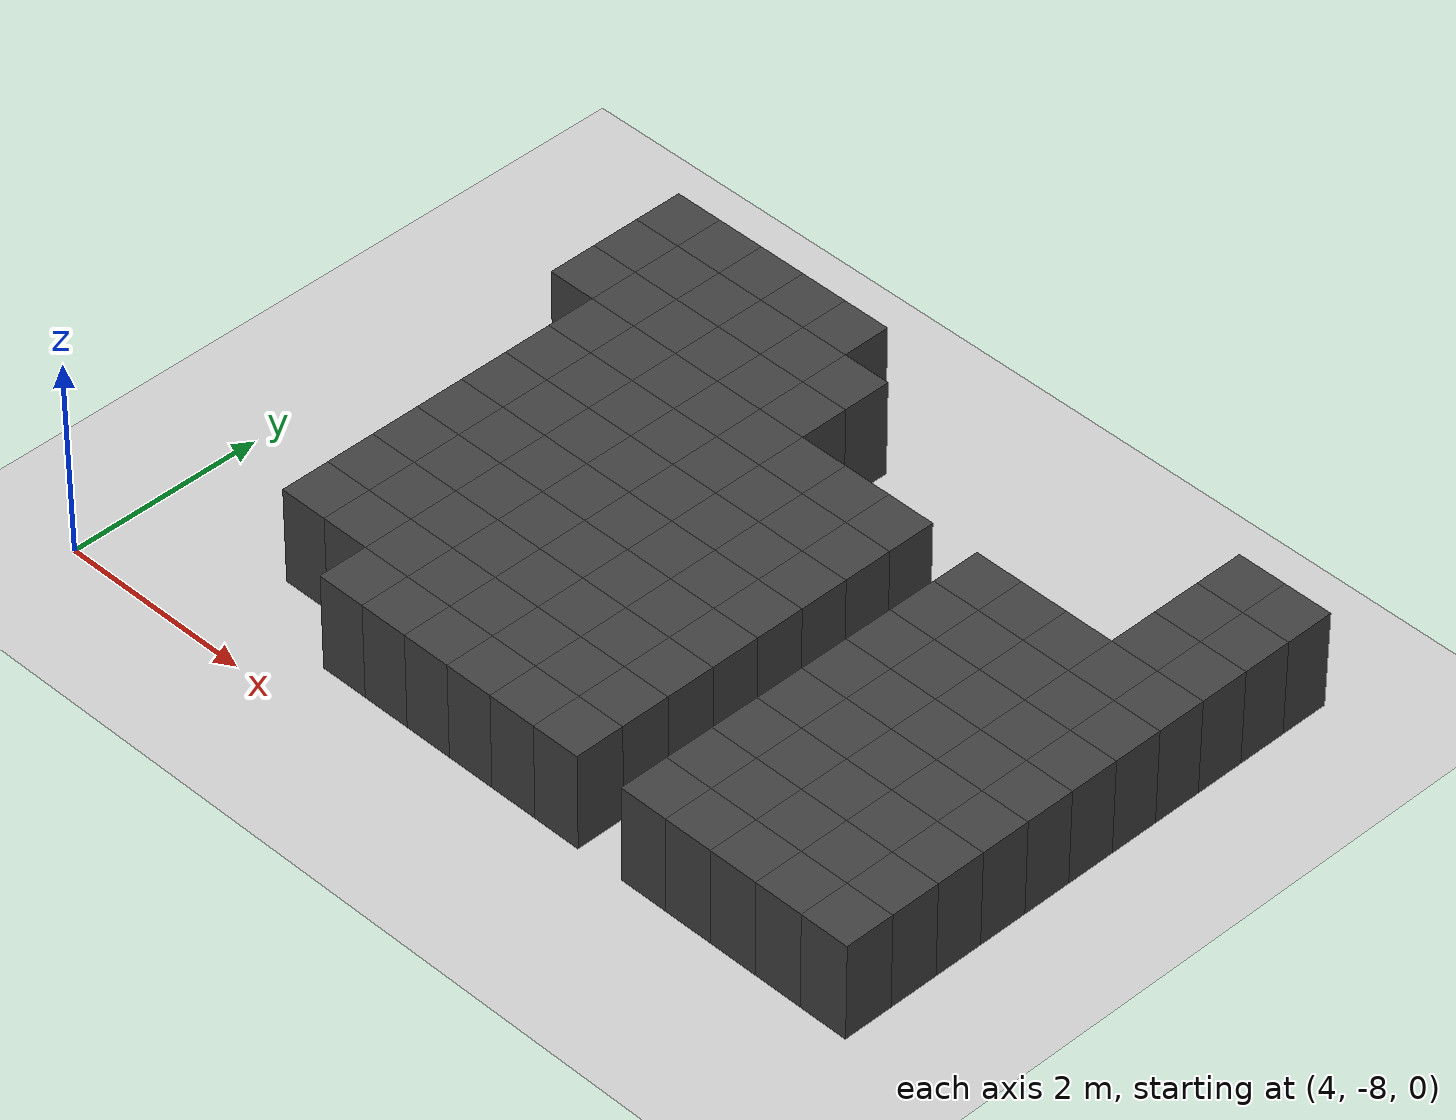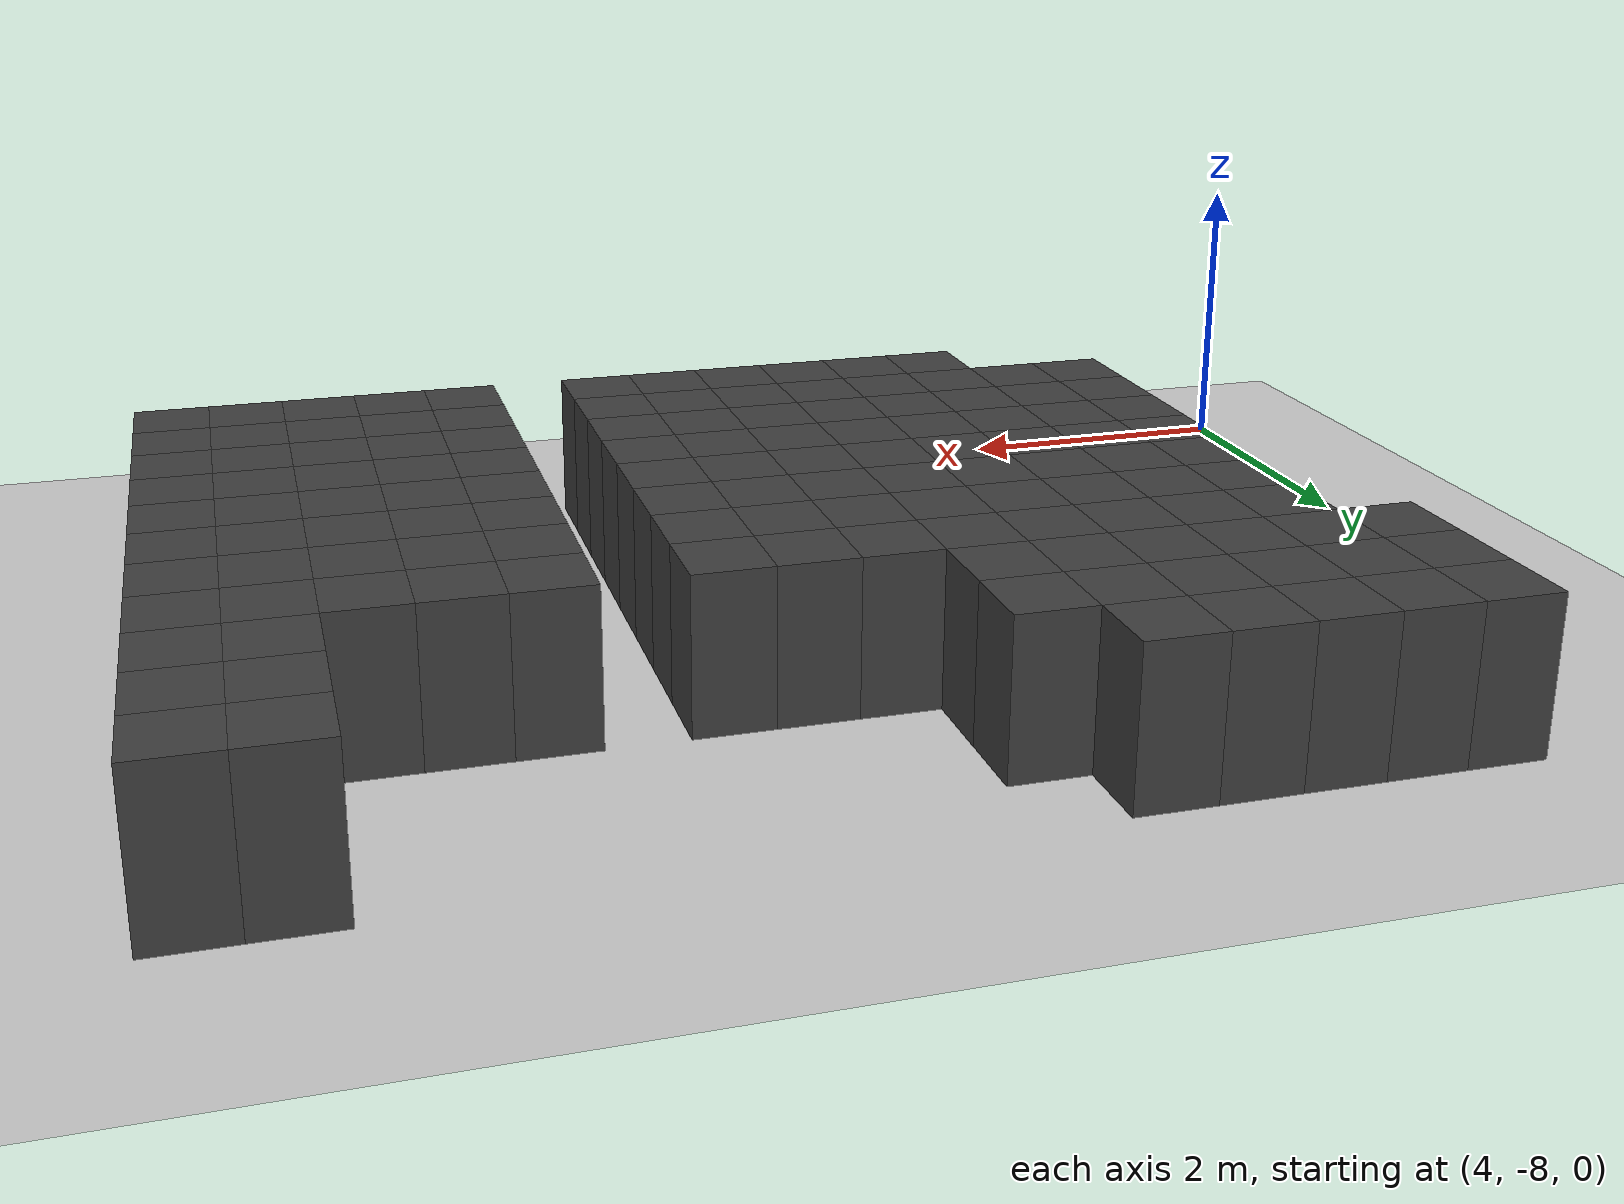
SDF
<sdf version="1.7">
 <world name="map_10764">
  <model name="ground_plane">
   <static>true</static>
   <link name="link">
    <collision name="collision">
     <geometry><plane><normal>0 0 1</normal><size>200 200</size></plane></geometry>
    </collision>
    <visual name="visual">
     <geometry><plane><normal>0 0 1</normal><size>200 200</size></plane></geometry>
     <material><ambient>0.8 0.8 0.8 1</ambient><diffuse>0.8 0.8 0.8 1</diffuse></material>
    </visual>
   </link>
  </model>
  <model name="maze_environment">
   <static>true</static>
   <link name="wall_1196">
    <pose>5.250 -2.250 0.500 0 0 0</pose>
    <collision name="col"><geometry><box><size>0.5 0.5 1.0</size></box></geometry></collision>
    <visual name="vis">
     <geometry><box><size>0.5 0.5 1.0</size></box></geometry>
     <material><ambient>0.15 0.15 0.15 1</ambient><diffuse>0.25 0.25 0.25 1</diffuse></material>
    </visual>
   </link>
   <link name="wall_1197">
    <pose>5.750 -2.250 0.500 0 0 0</pose>
    <collision name="col"><geometry><box><size>0.5 0.5 1.0</size></box></geometry></collision>
    <visual name="vis">
     <geometry><box><size>0.5 0.5 1.0</size></box></geometry>
     <material><ambient>0.15 0.15 0.15 1</ambient><diffuse>0.25 0.25 0.25 1</diffuse></material>
    </visual>
   </link>
   <link name="wall_1198">
    <pose>6.250 -2.250 0.500 0 0 0</pose>
    <collision name="col"><geometry><box><size>0.5 0.5 1.0</size></box></geometry></collision>
    <visual name="vis">
     <geometry><box><size>0.5 0.5 1.0</size></box></geometry>
     <material><ambient>0.15 0.15 0.15 1</ambient><diffuse>0.25 0.25 0.25 1</diffuse></material>
    </visual>
   </link>
   <link name="wall_1199">
    <pose>6.750 -2.250 0.500 0 0 0</pose>
    <collision name="col"><geometry><box><size>0.5 0.5 1.0</size></box></geometry></collision>
    <visual name="vis">
     <geometry><box><size>0.5 0.5 1.0</size></box></geometry>
     <material><ambient>0.15 0.15 0.15 1</ambient><diffuse>0.25 0.25 0.25 1</diffuse></material>
    </visual>
   </link>
   <link name="wall_1200">
    <pose>7.250 -2.250 0.500 0 0 0</pose>
    <collision name="col"><geometry><box><size>0.5 0.5 1.0</size></box></geometry></collision>
    <visual name="vis">
     <geometry><box><size>0.5 0.5 1.0</size></box></geometry>
     <material><ambient>0.15 0.15 0.15 1</ambient><diffuse>0.25 0.25 0.25 1</diffuse></material>
    </visual>
   </link>
   <link name="wall_1201">
    <pose>11.750 -2.250 0.500 0 0 0</pose>
    <collision name="col"><geometry><box><size>0.5 0.5 1.0</size></box></geometry></collision>
    <visual name="vis">
     <geometry><box><size>0.5 0.5 1.0</size></box></geometry>
     <material><ambient>0.15 0.15 0.15 1</ambient><diffuse>0.25 0.25 0.25 1</diffuse></material>
    </visual>
   </link>
   <link name="wall_1202">
    <pose>12.250 -2.250 0.500 0 0 0</pose>
    <collision name="col"><geometry><box><size>0.5 0.5 1.0</size></box></geometry></collision>
    <visual name="vis">
     <geometry><box><size>0.5 0.5 1.0</size></box></geometry>
     <material><ambient>0.15 0.15 0.15 1</ambient><diffuse>0.25 0.25 0.25 1</diffuse></material>
    </visual>
   </link>
   <link name="wall_1237">
    <pose>5.250 -2.750 0.500 0 0 0</pose>
    <collision name="col"><geometry><box><size>0.5 0.5 1.0</size></box></geometry></collision>
    <visual name="vis">
     <geometry><box><size>0.5 0.5 1.0</size></box></geometry>
     <material><ambient>0.15 0.15 0.15 1</ambient><diffuse>0.25 0.25 0.25 1</diffuse></material>
    </visual>
   </link>
   <link name="wall_1238">
    <pose>5.750 -2.750 0.500 0 0 0</pose>
    <collision name="col"><geometry><box><size>0.5 0.5 1.0</size></box></geometry></collision>
    <visual name="vis">
     <geometry><box><size>0.5 0.5 1.0</size></box></geometry>
     <material><ambient>0.15 0.15 0.15 1</ambient><diffuse>0.25 0.25 0.25 1</diffuse></material>
    </visual>
   </link>
   <link name="wall_1239">
    <pose>6.250 -2.750 0.500 0 0 0</pose>
    <collision name="col"><geometry><box><size>0.5 0.5 1.0</size></box></geometry></collision>
    <visual name="vis">
     <geometry><box><size>0.5 0.5 1.0</size></box></geometry>
     <material><ambient>0.15 0.15 0.15 1</ambient><diffuse>0.25 0.25 0.25 1</diffuse></material>
    </visual>
   </link>
   <link name="wall_1240">
    <pose>6.750 -2.750 0.500 0 0 0</pose>
    <collision name="col"><geometry><box><size>0.5 0.5 1.0</size></box></geometry></collision>
    <visual name="vis">
     <geometry><box><size>0.5 0.5 1.0</size></box></geometry>
     <material><ambient>0.15 0.15 0.15 1</ambient><diffuse>0.25 0.25 0.25 1</diffuse></material>
    </visual>
   </link>
   <link name="wall_1241">
    <pose>7.250 -2.750 0.500 0 0 0</pose>
    <collision name="col"><geometry><box><size>0.5 0.5 1.0</size></box></geometry></collision>
    <visual name="vis">
     <geometry><box><size>0.5 0.5 1.0</size></box></geometry>
     <material><ambient>0.15 0.15 0.15 1</ambient><diffuse>0.25 0.25 0.25 1</diffuse></material>
    </visual>
   </link>
   <link name="wall_1242">
    <pose>7.750 -2.750 0.500 0 0 0</pose>
    <collision name="col"><geometry><box><size>0.5 0.5 1.0</size></box></geometry></collision>
    <visual name="vis">
     <geometry><box><size>0.5 0.5 1.0</size></box></geometry>
     <material><ambient>0.15 0.15 0.15 1</ambient><diffuse>0.25 0.25 0.25 1</diffuse></material>
    </visual>
   </link>
   <link name="wall_1243">
    <pose>11.750 -2.750 0.500 0 0 0</pose>
    <collision name="col"><geometry><box><size>0.5 0.5 1.0</size></box></geometry></collision>
    <visual name="vis">
     <geometry><box><size>0.5 0.5 1.0</size></box></geometry>
     <material><ambient>0.15 0.15 0.15 1</ambient><diffuse>0.25 0.25 0.25 1</diffuse></material>
    </visual>
   </link>
   <link name="wall_1244">
    <pose>12.250 -2.750 0.500 0 0 0</pose>
    <collision name="col"><geometry><box><size>0.5 0.5 1.0</size></box></geometry></collision>
    <visual name="vis">
     <geometry><box><size>0.5 0.5 1.0</size></box></geometry>
     <material><ambient>0.15 0.15 0.15 1</ambient><diffuse>0.25 0.25 0.25 1</diffuse></material>
    </visual>
   </link>
   <link name="wall_1279">
    <pose>5.250 -3.250 0.500 0 0 0</pose>
    <collision name="col"><geometry><box><size>0.5 0.5 1.0</size></box></geometry></collision>
    <visual name="vis">
     <geometry><box><size>0.5 0.5 1.0</size></box></geometry>
     <material><ambient>0.15 0.15 0.15 1</ambient><diffuse>0.25 0.25 0.25 1</diffuse></material>
    </visual>
   </link>
   <link name="wall_1280">
    <pose>5.750 -3.250 0.500 0 0 0</pose>
    <collision name="col"><geometry><box><size>0.5 0.5 1.0</size></box></geometry></collision>
    <visual name="vis">
     <geometry><box><size>0.5 0.5 1.0</size></box></geometry>
     <material><ambient>0.15 0.15 0.15 1</ambient><diffuse>0.25 0.25 0.25 1</diffuse></material>
    </visual>
   </link>
   <link name="wall_1281">
    <pose>6.250 -3.250 0.500 0 0 0</pose>
    <collision name="col"><geometry><box><size>0.5 0.5 1.0</size></box></geometry></collision>
    <visual name="vis">
     <geometry><box><size>0.5 0.5 1.0</size></box></geometry>
     <material><ambient>0.15 0.15 0.15 1</ambient><diffuse>0.25 0.25 0.25 1</diffuse></material>
    </visual>
   </link>
   <link name="wall_1282">
    <pose>6.750 -3.250 0.500 0 0 0</pose>
    <collision name="col"><geometry><box><size>0.5 0.5 1.0</size></box></geometry></collision>
    <visual name="vis">
     <geometry><box><size>0.5 0.5 1.0</size></box></geometry>
     <material><ambient>0.15 0.15 0.15 1</ambient><diffuse>0.25 0.25 0.25 1</diffuse></material>
    </visual>
   </link>
   <link name="wall_1283">
    <pose>7.250 -3.250 0.500 0 0 0</pose>
    <collision name="col"><geometry><box><size>0.5 0.5 1.0</size></box></geometry></collision>
    <visual name="vis">
     <geometry><box><size>0.5 0.5 1.0</size></box></geometry>
     <material><ambient>0.15 0.15 0.15 1</ambient><diffuse>0.25 0.25 0.25 1</diffuse></material>
    </visual>
   </link>
   <link name="wall_1284">
    <pose>7.750 -3.250 0.500 0 0 0</pose>
    <collision name="col"><geometry><box><size>0.5 0.5 1.0</size></box></geometry></collision>
    <visual name="vis">
     <geometry><box><size>0.5 0.5 1.0</size></box></geometry>
     <material><ambient>0.15 0.15 0.15 1</ambient><diffuse>0.25 0.25 0.25 1</diffuse></material>
    </visual>
   </link>
   <link name="wall_1285">
    <pose>11.750 -3.250 0.500 0 0 0</pose>
    <collision name="col"><geometry><box><size>0.5 0.5 1.0</size></box></geometry></collision>
    <visual name="vis">
     <geometry><box><size>0.5 0.5 1.0</size></box></geometry>
     <material><ambient>0.15 0.15 0.15 1</ambient><diffuse>0.25 0.25 0.25 1</diffuse></material>
    </visual>
   </link>
   <link name="wall_1286">
    <pose>12.250 -3.250 0.500 0 0 0</pose>
    <collision name="col"><geometry><box><size>0.5 0.5 1.0</size></box></geometry></collision>
    <visual name="vis">
     <geometry><box><size>0.5 0.5 1.0</size></box></geometry>
     <material><ambient>0.15 0.15 0.15 1</ambient><diffuse>0.25 0.25 0.25 1</diffuse></material>
    </visual>
   </link>
   <link name="wall_1322">
    <pose>5.750 -3.750 0.500 0 0 0</pose>
    <collision name="col"><geometry><box><size>0.5 0.5 1.0</size></box></geometry></collision>
    <visual name="vis">
     <geometry><box><size>0.5 0.5 1.0</size></box></geometry>
     <material><ambient>0.15 0.15 0.15 1</ambient><diffuse>0.25 0.25 0.25 1</diffuse></material>
    </visual>
   </link>
   <link name="wall_1323">
    <pose>6.250 -3.750 0.500 0 0 0</pose>
    <collision name="col"><geometry><box><size>0.5 0.5 1.0</size></box></geometry></collision>
    <visual name="vis">
     <geometry><box><size>0.5 0.5 1.0</size></box></geometry>
     <material><ambient>0.15 0.15 0.15 1</ambient><diffuse>0.25 0.25 0.25 1</diffuse></material>
    </visual>
   </link>
   <link name="wall_1324">
    <pose>6.750 -3.750 0.500 0 0 0</pose>
    <collision name="col"><geometry><box><size>0.5 0.5 1.0</size></box></geometry></collision>
    <visual name="vis">
     <geometry><box><size>0.5 0.5 1.0</size></box></geometry>
     <material><ambient>0.15 0.15 0.15 1</ambient><diffuse>0.25 0.25 0.25 1</diffuse></material>
    </visual>
   </link>
   <link name="wall_1325">
    <pose>7.250 -3.750 0.500 0 0 0</pose>
    <collision name="col"><geometry><box><size>0.5 0.5 1.0</size></box></geometry></collision>
    <visual name="vis">
     <geometry><box><size>0.5 0.5 1.0</size></box></geometry>
     <material><ambient>0.15 0.15 0.15 1</ambient><diffuse>0.25 0.25 0.25 1</diffuse></material>
    </visual>
   </link>
   <link name="wall_1326">
    <pose>7.750 -3.750 0.500 0 0 0</pose>
    <collision name="col"><geometry><box><size>0.5 0.5 1.0</size></box></geometry></collision>
    <visual name="vis">
     <geometry><box><size>0.5 0.5 1.0</size></box></geometry>
     <material><ambient>0.15 0.15 0.15 1</ambient><diffuse>0.25 0.25 0.25 1</diffuse></material>
    </visual>
   </link>
   <link name="wall_1327">
    <pose>8.250 -3.750 0.500 0 0 0</pose>
    <collision name="col"><geometry><box><size>0.5 0.5 1.0</size></box></geometry></collision>
    <visual name="vis">
     <geometry><box><size>0.5 0.5 1.0</size></box></geometry>
     <material><ambient>0.15 0.15 0.15 1</ambient><diffuse>0.25 0.25 0.25 1</diffuse></material>
    </visual>
   </link>
   <link name="wall_1328">
    <pose>8.750 -3.750 0.500 0 0 0</pose>
    <collision name="col"><geometry><box><size>0.5 0.5 1.0</size></box></geometry></collision>
    <visual name="vis">
     <geometry><box><size>0.5 0.5 1.0</size></box></geometry>
     <material><ambient>0.15 0.15 0.15 1</ambient><diffuse>0.25 0.25 0.25 1</diffuse></material>
    </visual>
   </link>
   <link name="wall_1329">
    <pose>9.250 -3.750 0.500 0 0 0</pose>
    <collision name="col"><geometry><box><size>0.5 0.5 1.0</size></box></geometry></collision>
    <visual name="vis">
     <geometry><box><size>0.5 0.5 1.0</size></box></geometry>
     <material><ambient>0.15 0.15 0.15 1</ambient><diffuse>0.25 0.25 0.25 1</diffuse></material>
    </visual>
   </link>
   <link name="wall_1330">
    <pose>10.250 -3.750 0.500 0 0 0</pose>
    <collision name="col"><geometry><box><size>0.5 0.5 1.0</size></box></geometry></collision>
    <visual name="vis">
     <geometry><box><size>0.5 0.5 1.0</size></box></geometry>
     <material><ambient>0.15 0.15 0.15 1</ambient><diffuse>0.25 0.25 0.25 1</diffuse></material>
    </visual>
   </link>
   <link name="wall_1331">
    <pose>10.750 -3.750 0.500 0 0 0</pose>
    <collision name="col"><geometry><box><size>0.5 0.5 1.0</size></box></geometry></collision>
    <visual name="vis">
     <geometry><box><size>0.5 0.5 1.0</size></box></geometry>
     <material><ambient>0.15 0.15 0.15 1</ambient><diffuse>0.25 0.25 0.25 1</diffuse></material>
    </visual>
   </link>
   <link name="wall_1332">
    <pose>11.250 -3.750 0.500 0 0 0</pose>
    <collision name="col"><geometry><box><size>0.5 0.5 1.0</size></box></geometry></collision>
    <visual name="vis">
     <geometry><box><size>0.5 0.5 1.0</size></box></geometry>
     <material><ambient>0.15 0.15 0.15 1</ambient><diffuse>0.25 0.25 0.25 1</diffuse></material>
    </visual>
   </link>
   <link name="wall_1333">
    <pose>11.750 -3.750 0.500 0 0 0</pose>
    <collision name="col"><geometry><box><size>0.5 0.5 1.0</size></box></geometry></collision>
    <visual name="vis">
     <geometry><box><size>0.5 0.5 1.0</size></box></geometry>
     <material><ambient>0.15 0.15 0.15 1</ambient><diffuse>0.25 0.25 0.25 1</diffuse></material>
    </visual>
   </link>
   <link name="wall_1334">
    <pose>12.250 -3.750 0.500 0 0 0</pose>
    <collision name="col"><geometry><box><size>0.5 0.5 1.0</size></box></geometry></collision>
    <visual name="vis">
     <geometry><box><size>0.5 0.5 1.0</size></box></geometry>
     <material><ambient>0.15 0.15 0.15 1</ambient><diffuse>0.25 0.25 0.25 1</diffuse></material>
    </visual>
   </link>
   <link name="wall_1366">
    <pose>5.750 -4.250 0.500 0 0 0</pose>
    <collision name="col"><geometry><box><size>0.5 0.5 1.0</size></box></geometry></collision>
    <visual name="vis">
     <geometry><box><size>0.5 0.5 1.0</size></box></geometry>
     <material><ambient>0.15 0.15 0.15 1</ambient><diffuse>0.25 0.25 0.25 1</diffuse></material>
    </visual>
   </link>
   <link name="wall_1367">
    <pose>6.250 -4.250 0.500 0 0 0</pose>
    <collision name="col"><geometry><box><size>0.5 0.5 1.0</size></box></geometry></collision>
    <visual name="vis">
     <geometry><box><size>0.5 0.5 1.0</size></box></geometry>
     <material><ambient>0.15 0.15 0.15 1</ambient><diffuse>0.25 0.25 0.25 1</diffuse></material>
    </visual>
   </link>
   <link name="wall_1368">
    <pose>6.750 -4.250 0.500 0 0 0</pose>
    <collision name="col"><geometry><box><size>0.5 0.5 1.0</size></box></geometry></collision>
    <visual name="vis">
     <geometry><box><size>0.5 0.5 1.0</size></box></geometry>
     <material><ambient>0.15 0.15 0.15 1</ambient><diffuse>0.25 0.25 0.25 1</diffuse></material>
    </visual>
   </link>
   <link name="wall_1369">
    <pose>7.250 -4.250 0.500 0 0 0</pose>
    <collision name="col"><geometry><box><size>0.5 0.5 1.0</size></box></geometry></collision>
    <visual name="vis">
     <geometry><box><size>0.5 0.5 1.0</size></box></geometry>
     <material><ambient>0.15 0.15 0.15 1</ambient><diffuse>0.25 0.25 0.25 1</diffuse></material>
    </visual>
   </link>
   <link name="wall_1370">
    <pose>7.750 -4.250 0.500 0 0 0</pose>
    <collision name="col"><geometry><box><size>0.5 0.5 1.0</size></box></geometry></collision>
    <visual name="vis">
     <geometry><box><size>0.5 0.5 1.0</size></box></geometry>
     <material><ambient>0.15 0.15 0.15 1</ambient><diffuse>0.25 0.25 0.25 1</diffuse></material>
    </visual>
   </link>
   <link name="wall_1371">
    <pose>8.250 -4.250 0.500 0 0 0</pose>
    <collision name="col"><geometry><box><size>0.5 0.5 1.0</size></box></geometry></collision>
    <visual name="vis">
     <geometry><box><size>0.5 0.5 1.0</size></box></geometry>
     <material><ambient>0.15 0.15 0.15 1</ambient><diffuse>0.25 0.25 0.25 1</diffuse></material>
    </visual>
   </link>
   <link name="wall_1372">
    <pose>8.750 -4.250 0.500 0 0 0</pose>
    <collision name="col"><geometry><box><size>0.5 0.5 1.0</size></box></geometry></collision>
    <visual name="vis">
     <geometry><box><size>0.5 0.5 1.0</size></box></geometry>
     <material><ambient>0.15 0.15 0.15 1</ambient><diffuse>0.25 0.25 0.25 1</diffuse></material>
    </visual>
   </link>
   <link name="wall_1373">
    <pose>9.250 -4.250 0.500 0 0 0</pose>
    <collision name="col"><geometry><box><size>0.5 0.5 1.0</size></box></geometry></collision>
    <visual name="vis">
     <geometry><box><size>0.5 0.5 1.0</size></box></geometry>
     <material><ambient>0.15 0.15 0.15 1</ambient><diffuse>0.25 0.25 0.25 1</diffuse></material>
    </visual>
   </link>
   <link name="wall_1374">
    <pose>10.250 -4.250 0.500 0 0 0</pose>
    <collision name="col"><geometry><box><size>0.5 0.5 1.0</size></box></geometry></collision>
    <visual name="vis">
     <geometry><box><size>0.5 0.5 1.0</size></box></geometry>
     <material><ambient>0.15 0.15 0.15 1</ambient><diffuse>0.25 0.25 0.25 1</diffuse></material>
    </visual>
   </link>
   <link name="wall_1375">
    <pose>10.750 -4.250 0.500 0 0 0</pose>
    <collision name="col"><geometry><box><size>0.5 0.5 1.0</size></box></geometry></collision>
    <visual name="vis">
     <geometry><box><size>0.5 0.5 1.0</size></box></geometry>
     <material><ambient>0.15 0.15 0.15 1</ambient><diffuse>0.25 0.25 0.25 1</diffuse></material>
    </visual>
   </link>
   <link name="wall_1376">
    <pose>11.250 -4.250 0.500 0 0 0</pose>
    <collision name="col"><geometry><box><size>0.5 0.5 1.0</size></box></geometry></collision>
    <visual name="vis">
     <geometry><box><size>0.5 0.5 1.0</size></box></geometry>
     <material><ambient>0.15 0.15 0.15 1</ambient><diffuse>0.25 0.25 0.25 1</diffuse></material>
    </visual>
   </link>
   <link name="wall_1377">
    <pose>11.750 -4.250 0.500 0 0 0</pose>
    <collision name="col"><geometry><box><size>0.5 0.5 1.0</size></box></geometry></collision>
    <visual name="vis">
     <geometry><box><size>0.5 0.5 1.0</size></box></geometry>
     <material><ambient>0.15 0.15 0.15 1</ambient><diffuse>0.25 0.25 0.25 1</diffuse></material>
    </visual>
   </link>
   <link name="wall_1378">
    <pose>12.250 -4.250 0.500 0 0 0</pose>
    <collision name="col"><geometry><box><size>0.5 0.5 1.0</size></box></geometry></collision>
    <visual name="vis">
     <geometry><box><size>0.5 0.5 1.0</size></box></geometry>
     <material><ambient>0.15 0.15 0.15 1</ambient><diffuse>0.25 0.25 0.25 1</diffuse></material>
    </visual>
   </link>
   <link name="wall_1410">
    <pose>5.750 -4.750 0.500 0 0 0</pose>
    <collision name="col"><geometry><box><size>0.5 0.5 1.0</size></box></geometry></collision>
    <visual name="vis">
     <geometry><box><size>0.5 0.5 1.0</size></box></geometry>
     <material><ambient>0.15 0.15 0.15 1</ambient><diffuse>0.25 0.25 0.25 1</diffuse></material>
    </visual>
   </link>
   <link name="wall_1411">
    <pose>6.250 -4.750 0.500 0 0 0</pose>
    <collision name="col"><geometry><box><size>0.5 0.5 1.0</size></box></geometry></collision>
    <visual name="vis">
     <geometry><box><size>0.5 0.5 1.0</size></box></geometry>
     <material><ambient>0.15 0.15 0.15 1</ambient><diffuse>0.25 0.25 0.25 1</diffuse></material>
    </visual>
   </link>
   <link name="wall_1412">
    <pose>6.750 -4.750 0.500 0 0 0</pose>
    <collision name="col"><geometry><box><size>0.5 0.5 1.0</size></box></geometry></collision>
    <visual name="vis">
     <geometry><box><size>0.5 0.5 1.0</size></box></geometry>
     <material><ambient>0.15 0.15 0.15 1</ambient><diffuse>0.25 0.25 0.25 1</diffuse></material>
    </visual>
   </link>
   <link name="wall_1413">
    <pose>7.250 -4.750 0.500 0 0 0</pose>
    <collision name="col"><geometry><box><size>0.5 0.5 1.0</size></box></geometry></collision>
    <visual name="vis">
     <geometry><box><size>0.5 0.5 1.0</size></box></geometry>
     <material><ambient>0.15 0.15 0.15 1</ambient><diffuse>0.25 0.25 0.25 1</diffuse></material>
    </visual>
   </link>
   <link name="wall_1414">
    <pose>7.750 -4.750 0.500 0 0 0</pose>
    <collision name="col"><geometry><box><size>0.5 0.5 1.0</size></box></geometry></collision>
    <visual name="vis">
     <geometry><box><size>0.5 0.5 1.0</size></box></geometry>
     <material><ambient>0.15 0.15 0.15 1</ambient><diffuse>0.25 0.25 0.25 1</diffuse></material>
    </visual>
   </link>
   <link name="wall_1415">
    <pose>8.250 -4.750 0.500 0 0 0</pose>
    <collision name="col"><geometry><box><size>0.5 0.5 1.0</size></box></geometry></collision>
    <visual name="vis">
     <geometry><box><size>0.5 0.5 1.0</size></box></geometry>
     <material><ambient>0.15 0.15 0.15 1</ambient><diffuse>0.25 0.25 0.25 1</diffuse></material>
    </visual>
   </link>
   <link name="wall_1416">
    <pose>8.750 -4.750 0.500 0 0 0</pose>
    <collision name="col"><geometry><box><size>0.5 0.5 1.0</size></box></geometry></collision>
    <visual name="vis">
     <geometry><box><size>0.5 0.5 1.0</size></box></geometry>
     <material><ambient>0.15 0.15 0.15 1</ambient><diffuse>0.25 0.25 0.25 1</diffuse></material>
    </visual>
   </link>
   <link name="wall_1417">
    <pose>9.250 -4.750 0.500 0 0 0</pose>
    <collision name="col"><geometry><box><size>0.5 0.5 1.0</size></box></geometry></collision>
    <visual name="vis">
     <geometry><box><size>0.5 0.5 1.0</size></box></geometry>
     <material><ambient>0.15 0.15 0.15 1</ambient><diffuse>0.25 0.25 0.25 1</diffuse></material>
    </visual>
   </link>
   <link name="wall_1418">
    <pose>10.250 -4.750 0.500 0 0 0</pose>
    <collision name="col"><geometry><box><size>0.5 0.5 1.0</size></box></geometry></collision>
    <visual name="vis">
     <geometry><box><size>0.5 0.5 1.0</size></box></geometry>
     <material><ambient>0.15 0.15 0.15 1</ambient><diffuse>0.25 0.25 0.25 1</diffuse></material>
    </visual>
   </link>
   <link name="wall_1419">
    <pose>10.750 -4.750 0.500 0 0 0</pose>
    <collision name="col"><geometry><box><size>0.5 0.5 1.0</size></box></geometry></collision>
    <visual name="vis">
     <geometry><box><size>0.5 0.5 1.0</size></box></geometry>
     <material><ambient>0.15 0.15 0.15 1</ambient><diffuse>0.25 0.25 0.25 1</diffuse></material>
    </visual>
   </link>
   <link name="wall_1420">
    <pose>11.250 -4.750 0.500 0 0 0</pose>
    <collision name="col"><geometry><box><size>0.5 0.5 1.0</size></box></geometry></collision>
    <visual name="vis">
     <geometry><box><size>0.5 0.5 1.0</size></box></geometry>
     <material><ambient>0.15 0.15 0.15 1</ambient><diffuse>0.25 0.25 0.25 1</diffuse></material>
    </visual>
   </link>
   <link name="wall_1421">
    <pose>11.750 -4.750 0.500 0 0 0</pose>
    <collision name="col"><geometry><box><size>0.5 0.5 1.0</size></box></geometry></collision>
    <visual name="vis">
     <geometry><box><size>0.5 0.5 1.0</size></box></geometry>
     <material><ambient>0.15 0.15 0.15 1</ambient><diffuse>0.25 0.25 0.25 1</diffuse></material>
    </visual>
   </link>
   <link name="wall_1422">
    <pose>12.250 -4.750 0.500 0 0 0</pose>
    <collision name="col"><geometry><box><size>0.5 0.5 1.0</size></box></geometry></collision>
    <visual name="vis">
     <geometry><box><size>0.5 0.5 1.0</size></box></geometry>
     <material><ambient>0.15 0.15 0.15 1</ambient><diffuse>0.25 0.25 0.25 1</diffuse></material>
    </visual>
   </link>
   <link name="wall_1454">
    <pose>5.750 -5.250 0.500 0 0 0</pose>
    <collision name="col"><geometry><box><size>0.5 0.5 1.0</size></box></geometry></collision>
    <visual name="vis">
     <geometry><box><size>0.5 0.5 1.0</size></box></geometry>
     <material><ambient>0.15 0.15 0.15 1</ambient><diffuse>0.25 0.25 0.25 1</diffuse></material>
    </visual>
   </link>
   <link name="wall_1455">
    <pose>6.250 -5.250 0.500 0 0 0</pose>
    <collision name="col"><geometry><box><size>0.5 0.5 1.0</size></box></geometry></collision>
    <visual name="vis">
     <geometry><box><size>0.5 0.5 1.0</size></box></geometry>
     <material><ambient>0.15 0.15 0.15 1</ambient><diffuse>0.25 0.25 0.25 1</diffuse></material>
    </visual>
   </link>
   <link name="wall_1456">
    <pose>6.750 -5.250 0.500 0 0 0</pose>
    <collision name="col"><geometry><box><size>0.5 0.5 1.0</size></box></geometry></collision>
    <visual name="vis">
     <geometry><box><size>0.5 0.5 1.0</size></box></geometry>
     <material><ambient>0.15 0.15 0.15 1</ambient><diffuse>0.25 0.25 0.25 1</diffuse></material>
    </visual>
   </link>
   <link name="wall_1457">
    <pose>7.250 -5.250 0.500 0 0 0</pose>
    <collision name="col"><geometry><box><size>0.5 0.5 1.0</size></box></geometry></collision>
    <visual name="vis">
     <geometry><box><size>0.5 0.5 1.0</size></box></geometry>
     <material><ambient>0.15 0.15 0.15 1</ambient><diffuse>0.25 0.25 0.25 1</diffuse></material>
    </visual>
   </link>
   <link name="wall_1458">
    <pose>7.750 -5.250 0.500 0 0 0</pose>
    <collision name="col"><geometry><box><size>0.5 0.5 1.0</size></box></geometry></collision>
    <visual name="vis">
     <geometry><box><size>0.5 0.5 1.0</size></box></geometry>
     <material><ambient>0.15 0.15 0.15 1</ambient><diffuse>0.25 0.25 0.25 1</diffuse></material>
    </visual>
   </link>
   <link name="wall_1459">
    <pose>8.250 -5.250 0.500 0 0 0</pose>
    <collision name="col"><geometry><box><size>0.5 0.5 1.0</size></box></geometry></collision>
    <visual name="vis">
     <geometry><box><size>0.5 0.5 1.0</size></box></geometry>
     <material><ambient>0.15 0.15 0.15 1</ambient><diffuse>0.25 0.25 0.25 1</diffuse></material>
    </visual>
   </link>
   <link name="wall_1460">
    <pose>8.750 -5.250 0.500 0 0 0</pose>
    <collision name="col"><geometry><box><size>0.5 0.5 1.0</size></box></geometry></collision>
    <visual name="vis">
     <geometry><box><size>0.5 0.5 1.0</size></box></geometry>
     <material><ambient>0.15 0.15 0.15 1</ambient><diffuse>0.25 0.25 0.25 1</diffuse></material>
    </visual>
   </link>
   <link name="wall_1461">
    <pose>9.250 -5.250 0.500 0 0 0</pose>
    <collision name="col"><geometry><box><size>0.5 0.5 1.0</size></box></geometry></collision>
    <visual name="vis">
     <geometry><box><size>0.5 0.5 1.0</size></box></geometry>
     <material><ambient>0.15 0.15 0.15 1</ambient><diffuse>0.25 0.25 0.25 1</diffuse></material>
    </visual>
   </link>
   <link name="wall_1462">
    <pose>10.250 -5.250 0.500 0 0 0</pose>
    <collision name="col"><geometry><box><size>0.5 0.5 1.0</size></box></geometry></collision>
    <visual name="vis">
     <geometry><box><size>0.5 0.5 1.0</size></box></geometry>
     <material><ambient>0.15 0.15 0.15 1</ambient><diffuse>0.25 0.25 0.25 1</diffuse></material>
    </visual>
   </link>
   <link name="wall_1463">
    <pose>10.750 -5.250 0.500 0 0 0</pose>
    <collision name="col"><geometry><box><size>0.5 0.5 1.0</size></box></geometry></collision>
    <visual name="vis">
     <geometry><box><size>0.5 0.5 1.0</size></box></geometry>
     <material><ambient>0.15 0.15 0.15 1</ambient><diffuse>0.25 0.25 0.25 1</diffuse></material>
    </visual>
   </link>
   <link name="wall_1464">
    <pose>11.250 -5.250 0.500 0 0 0</pose>
    <collision name="col"><geometry><box><size>0.5 0.5 1.0</size></box></geometry></collision>
    <visual name="vis">
     <geometry><box><size>0.5 0.5 1.0</size></box></geometry>
     <material><ambient>0.15 0.15 0.15 1</ambient><diffuse>0.25 0.25 0.25 1</diffuse></material>
    </visual>
   </link>
   <link name="wall_1465">
    <pose>11.750 -5.250 0.500 0 0 0</pose>
    <collision name="col"><geometry><box><size>0.5 0.5 1.0</size></box></geometry></collision>
    <visual name="vis">
     <geometry><box><size>0.5 0.5 1.0</size></box></geometry>
     <material><ambient>0.15 0.15 0.15 1</ambient><diffuse>0.25 0.25 0.25 1</diffuse></material>
    </visual>
   </link>
   <link name="wall_1466">
    <pose>12.250 -5.250 0.500 0 0 0</pose>
    <collision name="col"><geometry><box><size>0.5 0.5 1.0</size></box></geometry></collision>
    <visual name="vis">
     <geometry><box><size>0.5 0.5 1.0</size></box></geometry>
     <material><ambient>0.15 0.15 0.15 1</ambient><diffuse>0.25 0.25 0.25 1</diffuse></material>
    </visual>
   </link>
   <link name="wall_1498">
    <pose>5.750 -5.750 0.500 0 0 0</pose>
    <collision name="col"><geometry><box><size>0.5 0.5 1.0</size></box></geometry></collision>
    <visual name="vis">
     <geometry><box><size>0.5 0.5 1.0</size></box></geometry>
     <material><ambient>0.15 0.15 0.15 1</ambient><diffuse>0.25 0.25 0.25 1</diffuse></material>
    </visual>
   </link>
   <link name="wall_1499">
    <pose>6.250 -5.750 0.500 0 0 0</pose>
    <collision name="col"><geometry><box><size>0.5 0.5 1.0</size></box></geometry></collision>
    <visual name="vis">
     <geometry><box><size>0.5 0.5 1.0</size></box></geometry>
     <material><ambient>0.15 0.15 0.15 1</ambient><diffuse>0.25 0.25 0.25 1</diffuse></material>
    </visual>
   </link>
   <link name="wall_1500">
    <pose>6.750 -5.750 0.500 0 0 0</pose>
    <collision name="col"><geometry><box><size>0.5 0.5 1.0</size></box></geometry></collision>
    <visual name="vis">
     <geometry><box><size>0.5 0.5 1.0</size></box></geometry>
     <material><ambient>0.15 0.15 0.15 1</ambient><diffuse>0.25 0.25 0.25 1</diffuse></material>
    </visual>
   </link>
   <link name="wall_1501">
    <pose>7.250 -5.750 0.500 0 0 0</pose>
    <collision name="col"><geometry><box><size>0.5 0.5 1.0</size></box></geometry></collision>
    <visual name="vis">
     <geometry><box><size>0.5 0.5 1.0</size></box></geometry>
     <material><ambient>0.15 0.15 0.15 1</ambient><diffuse>0.25 0.25 0.25 1</diffuse></material>
    </visual>
   </link>
   <link name="wall_1502">
    <pose>7.750 -5.750 0.500 0 0 0</pose>
    <collision name="col"><geometry><box><size>0.5 0.5 1.0</size></box></geometry></collision>
    <visual name="vis">
     <geometry><box><size>0.5 0.5 1.0</size></box></geometry>
     <material><ambient>0.15 0.15 0.15 1</ambient><diffuse>0.25 0.25 0.25 1</diffuse></material>
    </visual>
   </link>
   <link name="wall_1503">
    <pose>8.250 -5.750 0.500 0 0 0</pose>
    <collision name="col"><geometry><box><size>0.5 0.5 1.0</size></box></geometry></collision>
    <visual name="vis">
     <geometry><box><size>0.5 0.5 1.0</size></box></geometry>
     <material><ambient>0.15 0.15 0.15 1</ambient><diffuse>0.25 0.25 0.25 1</diffuse></material>
    </visual>
   </link>
   <link name="wall_1504">
    <pose>8.750 -5.750 0.500 0 0 0</pose>
    <collision name="col"><geometry><box><size>0.5 0.5 1.0</size></box></geometry></collision>
    <visual name="vis">
     <geometry><box><size>0.5 0.5 1.0</size></box></geometry>
     <material><ambient>0.15 0.15 0.15 1</ambient><diffuse>0.25 0.25 0.25 1</diffuse></material>
    </visual>
   </link>
   <link name="wall_1505">
    <pose>9.250 -5.750 0.500 0 0 0</pose>
    <collision name="col"><geometry><box><size>0.5 0.5 1.0</size></box></geometry></collision>
    <visual name="vis">
     <geometry><box><size>0.5 0.5 1.0</size></box></geometry>
     <material><ambient>0.15 0.15 0.15 1</ambient><diffuse>0.25 0.25 0.25 1</diffuse></material>
    </visual>
   </link>
   <link name="wall_1506">
    <pose>10.250 -5.750 0.500 0 0 0</pose>
    <collision name="col"><geometry><box><size>0.5 0.5 1.0</size></box></geometry></collision>
    <visual name="vis">
     <geometry><box><size>0.5 0.5 1.0</size></box></geometry>
     <material><ambient>0.15 0.15 0.15 1</ambient><diffuse>0.25 0.25 0.25 1</diffuse></material>
    </visual>
   </link>
   <link name="wall_1507">
    <pose>10.750 -5.750 0.500 0 0 0</pose>
    <collision name="col"><geometry><box><size>0.5 0.5 1.0</size></box></geometry></collision>
    <visual name="vis">
     <geometry><box><size>0.5 0.5 1.0</size></box></geometry>
     <material><ambient>0.15 0.15 0.15 1</ambient><diffuse>0.25 0.25 0.25 1</diffuse></material>
    </visual>
   </link>
   <link name="wall_1508">
    <pose>11.250 -5.750 0.500 0 0 0</pose>
    <collision name="col"><geometry><box><size>0.5 0.5 1.0</size></box></geometry></collision>
    <visual name="vis">
     <geometry><box><size>0.5 0.5 1.0</size></box></geometry>
     <material><ambient>0.15 0.15 0.15 1</ambient><diffuse>0.25 0.25 0.25 1</diffuse></material>
    </visual>
   </link>
   <link name="wall_1509">
    <pose>11.750 -5.750 0.500 0 0 0</pose>
    <collision name="col"><geometry><box><size>0.5 0.5 1.0</size></box></geometry></collision>
    <visual name="vis">
     <geometry><box><size>0.5 0.5 1.0</size></box></geometry>
     <material><ambient>0.15 0.15 0.15 1</ambient><diffuse>0.25 0.25 0.25 1</diffuse></material>
    </visual>
   </link>
   <link name="wall_1510">
    <pose>12.250 -5.750 0.500 0 0 0</pose>
    <collision name="col"><geometry><box><size>0.5 0.5 1.0</size></box></geometry></collision>
    <visual name="vis">
     <geometry><box><size>0.5 0.5 1.0</size></box></geometry>
     <material><ambient>0.15 0.15 0.15 1</ambient><diffuse>0.25 0.25 0.25 1</diffuse></material>
    </visual>
   </link>
   <link name="wall_1542">
    <pose>5.750 -6.250 0.500 0 0 0</pose>
    <collision name="col"><geometry><box><size>0.5 0.5 1.0</size></box></geometry></collision>
    <visual name="vis">
     <geometry><box><size>0.5 0.5 1.0</size></box></geometry>
     <material><ambient>0.15 0.15 0.15 1</ambient><diffuse>0.25 0.25 0.25 1</diffuse></material>
    </visual>
   </link>
   <link name="wall_1543">
    <pose>6.250 -6.250 0.500 0 0 0</pose>
    <collision name="col"><geometry><box><size>0.5 0.5 1.0</size></box></geometry></collision>
    <visual name="vis">
     <geometry><box><size>0.5 0.5 1.0</size></box></geometry>
     <material><ambient>0.15 0.15 0.15 1</ambient><diffuse>0.25 0.25 0.25 1</diffuse></material>
    </visual>
   </link>
   <link name="wall_1544">
    <pose>6.750 -6.250 0.500 0 0 0</pose>
    <collision name="col"><geometry><box><size>0.5 0.5 1.0</size></box></geometry></collision>
    <visual name="vis">
     <geometry><box><size>0.5 0.5 1.0</size></box></geometry>
     <material><ambient>0.15 0.15 0.15 1</ambient><diffuse>0.25 0.25 0.25 1</diffuse></material>
    </visual>
   </link>
   <link name="wall_1545">
    <pose>7.250 -6.250 0.500 0 0 0</pose>
    <collision name="col"><geometry><box><size>0.5 0.5 1.0</size></box></geometry></collision>
    <visual name="vis">
     <geometry><box><size>0.5 0.5 1.0</size></box></geometry>
     <material><ambient>0.15 0.15 0.15 1</ambient><diffuse>0.25 0.25 0.25 1</diffuse></material>
    </visual>
   </link>
   <link name="wall_1546">
    <pose>7.750 -6.250 0.500 0 0 0</pose>
    <collision name="col"><geometry><box><size>0.5 0.5 1.0</size></box></geometry></collision>
    <visual name="vis">
     <geometry><box><size>0.5 0.5 1.0</size></box></geometry>
     <material><ambient>0.15 0.15 0.15 1</ambient><diffuse>0.25 0.25 0.25 1</diffuse></material>
    </visual>
   </link>
   <link name="wall_1547">
    <pose>8.250 -6.250 0.500 0 0 0</pose>
    <collision name="col"><geometry><box><size>0.5 0.5 1.0</size></box></geometry></collision>
    <visual name="vis">
     <geometry><box><size>0.5 0.5 1.0</size></box></geometry>
     <material><ambient>0.15 0.15 0.15 1</ambient><diffuse>0.25 0.25 0.25 1</diffuse></material>
    </visual>
   </link>
   <link name="wall_1548">
    <pose>8.750 -6.250 0.500 0 0 0</pose>
    <collision name="col"><geometry><box><size>0.5 0.5 1.0</size></box></geometry></collision>
    <visual name="vis">
     <geometry><box><size>0.5 0.5 1.0</size></box></geometry>
     <material><ambient>0.15 0.15 0.15 1</ambient><diffuse>0.25 0.25 0.25 1</diffuse></material>
    </visual>
   </link>
   <link name="wall_1549">
    <pose>9.250 -6.250 0.500 0 0 0</pose>
    <collision name="col"><geometry><box><size>0.5 0.5 1.0</size></box></geometry></collision>
    <visual name="vis">
     <geometry><box><size>0.5 0.5 1.0</size></box></geometry>
     <material><ambient>0.15 0.15 0.15 1</ambient><diffuse>0.25 0.25 0.25 1</diffuse></material>
    </visual>
   </link>
   <link name="wall_1550">
    <pose>10.250 -6.250 0.500 0 0 0</pose>
    <collision name="col"><geometry><box><size>0.5 0.5 1.0</size></box></geometry></collision>
    <visual name="vis">
     <geometry><box><size>0.5 0.5 1.0</size></box></geometry>
     <material><ambient>0.15 0.15 0.15 1</ambient><diffuse>0.25 0.25 0.25 1</diffuse></material>
    </visual>
   </link>
   <link name="wall_1551">
    <pose>10.750 -6.250 0.500 0 0 0</pose>
    <collision name="col"><geometry><box><size>0.5 0.5 1.0</size></box></geometry></collision>
    <visual name="vis">
     <geometry><box><size>0.5 0.5 1.0</size></box></geometry>
     <material><ambient>0.15 0.15 0.15 1</ambient><diffuse>0.25 0.25 0.25 1</diffuse></material>
    </visual>
   </link>
   <link name="wall_1552">
    <pose>11.250 -6.250 0.500 0 0 0</pose>
    <collision name="col"><geometry><box><size>0.5 0.5 1.0</size></box></geometry></collision>
    <visual name="vis">
     <geometry><box><size>0.5 0.5 1.0</size></box></geometry>
     <material><ambient>0.15 0.15 0.15 1</ambient><diffuse>0.25 0.25 0.25 1</diffuse></material>
    </visual>
   </link>
   <link name="wall_1553">
    <pose>11.750 -6.250 0.500 0 0 0</pose>
    <collision name="col"><geometry><box><size>0.5 0.5 1.0</size></box></geometry></collision>
    <visual name="vis">
     <geometry><box><size>0.5 0.5 1.0</size></box></geometry>
     <material><ambient>0.15 0.15 0.15 1</ambient><diffuse>0.25 0.25 0.25 1</diffuse></material>
    </visual>
   </link>
   <link name="wall_1554">
    <pose>12.250 -6.250 0.500 0 0 0</pose>
    <collision name="col"><geometry><box><size>0.5 0.5 1.0</size></box></geometry></collision>
    <visual name="vis">
     <geometry><box><size>0.5 0.5 1.0</size></box></geometry>
     <material><ambient>0.15 0.15 0.15 1</ambient><diffuse>0.25 0.25 0.25 1</diffuse></material>
    </visual>
   </link>
   <link name="wall_1586">
    <pose>5.750 -6.750 0.500 0 0 0</pose>
    <collision name="col"><geometry><box><size>0.5 0.5 1.0</size></box></geometry></collision>
    <visual name="vis">
     <geometry><box><size>0.5 0.5 1.0</size></box></geometry>
     <material><ambient>0.15 0.15 0.15 1</ambient><diffuse>0.25 0.25 0.25 1</diffuse></material>
    </visual>
   </link>
   <link name="wall_1587">
    <pose>6.250 -6.750 0.500 0 0 0</pose>
    <collision name="col"><geometry><box><size>0.5 0.5 1.0</size></box></geometry></collision>
    <visual name="vis">
     <geometry><box><size>0.5 0.5 1.0</size></box></geometry>
     <material><ambient>0.15 0.15 0.15 1</ambient><diffuse>0.25 0.25 0.25 1</diffuse></material>
    </visual>
   </link>
   <link name="wall_1588">
    <pose>6.750 -6.750 0.500 0 0 0</pose>
    <collision name="col"><geometry><box><size>0.5 0.5 1.0</size></box></geometry></collision>
    <visual name="vis">
     <geometry><box><size>0.5 0.5 1.0</size></box></geometry>
     <material><ambient>0.15 0.15 0.15 1</ambient><diffuse>0.25 0.25 0.25 1</diffuse></material>
    </visual>
   </link>
   <link name="wall_1589">
    <pose>7.250 -6.750 0.500 0 0 0</pose>
    <collision name="col"><geometry><box><size>0.5 0.5 1.0</size></box></geometry></collision>
    <visual name="vis">
     <geometry><box><size>0.5 0.5 1.0</size></box></geometry>
     <material><ambient>0.15 0.15 0.15 1</ambient><diffuse>0.25 0.25 0.25 1</diffuse></material>
    </visual>
   </link>
   <link name="wall_1590">
    <pose>7.750 -6.750 0.500 0 0 0</pose>
    <collision name="col"><geometry><box><size>0.5 0.5 1.0</size></box></geometry></collision>
    <visual name="vis">
     <geometry><box><size>0.5 0.5 1.0</size></box></geometry>
     <material><ambient>0.15 0.15 0.15 1</ambient><diffuse>0.25 0.25 0.25 1</diffuse></material>
    </visual>
   </link>
   <link name="wall_1591">
    <pose>8.250 -6.750 0.500 0 0 0</pose>
    <collision name="col"><geometry><box><size>0.5 0.5 1.0</size></box></geometry></collision>
    <visual name="vis">
     <geometry><box><size>0.5 0.5 1.0</size></box></geometry>
     <material><ambient>0.15 0.15 0.15 1</ambient><diffuse>0.25 0.25 0.25 1</diffuse></material>
    </visual>
   </link>
   <link name="wall_1592">
    <pose>8.750 -6.750 0.500 0 0 0</pose>
    <collision name="col"><geometry><box><size>0.5 0.5 1.0</size></box></geometry></collision>
    <visual name="vis">
     <geometry><box><size>0.5 0.5 1.0</size></box></geometry>
     <material><ambient>0.15 0.15 0.15 1</ambient><diffuse>0.25 0.25 0.25 1</diffuse></material>
    </visual>
   </link>
   <link name="wall_1593">
    <pose>9.250 -6.750 0.500 0 0 0</pose>
    <collision name="col"><geometry><box><size>0.5 0.5 1.0</size></box></geometry></collision>
    <visual name="vis">
     <geometry><box><size>0.5 0.5 1.0</size></box></geometry>
     <material><ambient>0.15 0.15 0.15 1</ambient><diffuse>0.25 0.25 0.25 1</diffuse></material>
    </visual>
   </link>
   <link name="wall_1594">
    <pose>10.250 -6.750 0.500 0 0 0</pose>
    <collision name="col"><geometry><box><size>0.5 0.5 1.0</size></box></geometry></collision>
    <visual name="vis">
     <geometry><box><size>0.5 0.5 1.0</size></box></geometry>
     <material><ambient>0.15 0.15 0.15 1</ambient><diffuse>0.25 0.25 0.25 1</diffuse></material>
    </visual>
   </link>
   <link name="wall_1595">
    <pose>10.750 -6.750 0.500 0 0 0</pose>
    <collision name="col"><geometry><box><size>0.5 0.5 1.0</size></box></geometry></collision>
    <visual name="vis">
     <geometry><box><size>0.5 0.5 1.0</size></box></geometry>
     <material><ambient>0.15 0.15 0.15 1</ambient><diffuse>0.25 0.25 0.25 1</diffuse></material>
    </visual>
   </link>
   <link name="wall_1596">
    <pose>11.250 -6.750 0.500 0 0 0</pose>
    <collision name="col"><geometry><box><size>0.5 0.5 1.0</size></box></geometry></collision>
    <visual name="vis">
     <geometry><box><size>0.5 0.5 1.0</size></box></geometry>
     <material><ambient>0.15 0.15 0.15 1</ambient><diffuse>0.25 0.25 0.25 1</diffuse></material>
    </visual>
   </link>
   <link name="wall_1597">
    <pose>11.750 -6.750 0.500 0 0 0</pose>
    <collision name="col"><geometry><box><size>0.5 0.5 1.0</size></box></geometry></collision>
    <visual name="vis">
     <geometry><box><size>0.5 0.5 1.0</size></box></geometry>
     <material><ambient>0.15 0.15 0.15 1</ambient><diffuse>0.25 0.25 0.25 1</diffuse></material>
    </visual>
   </link>
   <link name="wall_1598">
    <pose>12.250 -6.750 0.500 0 0 0</pose>
    <collision name="col"><geometry><box><size>0.5 0.5 1.0</size></box></geometry></collision>
    <visual name="vis">
     <geometry><box><size>0.5 0.5 1.0</size></box></geometry>
     <material><ambient>0.15 0.15 0.15 1</ambient><diffuse>0.25 0.25 0.25 1</diffuse></material>
    </visual>
   </link>
   <link name="wall_1637">
    <pose>6.750 -7.250 0.500 0 0 0</pose>
    <collision name="col"><geometry><box><size>0.5 0.5 1.0</size></box></geometry></collision>
    <visual name="vis">
     <geometry><box><size>0.5 0.5 1.0</size></box></geometry>
     <material><ambient>0.15 0.15 0.15 1</ambient><diffuse>0.25 0.25 0.25 1</diffuse></material>
    </visual>
   </link>
   <link name="wall_1638">
    <pose>7.250 -7.250 0.500 0 0 0</pose>
    <collision name="col"><geometry><box><size>0.5 0.5 1.0</size></box></geometry></collision>
    <visual name="vis">
     <geometry><box><size>0.5 0.5 1.0</size></box></geometry>
     <material><ambient>0.15 0.15 0.15 1</ambient><diffuse>0.25 0.25 0.25 1</diffuse></material>
    </visual>
   </link>
   <link name="wall_1639">
    <pose>7.750 -7.250 0.500 0 0 0</pose>
    <collision name="col"><geometry><box><size>0.5 0.5 1.0</size></box></geometry></collision>
    <visual name="vis">
     <geometry><box><size>0.5 0.5 1.0</size></box></geometry>
     <material><ambient>0.15 0.15 0.15 1</ambient><diffuse>0.25 0.25 0.25 1</diffuse></material>
    </visual>
   </link>
   <link name="wall_1640">
    <pose>8.250 -7.250 0.500 0 0 0</pose>
    <collision name="col"><geometry><box><size>0.5 0.5 1.0</size></box></geometry></collision>
    <visual name="vis">
     <geometry><box><size>0.5 0.5 1.0</size></box></geometry>
     <material><ambient>0.15 0.15 0.15 1</ambient><diffuse>0.25 0.25 0.25 1</diffuse></material>
    </visual>
   </link>
   <link name="wall_1641">
    <pose>8.750 -7.250 0.500 0 0 0</pose>
    <collision name="col"><geometry><box><size>0.5 0.5 1.0</size></box></geometry></collision>
    <visual name="vis">
     <geometry><box><size>0.5 0.5 1.0</size></box></geometry>
     <material><ambient>0.15 0.15 0.15 1</ambient><diffuse>0.25 0.25 0.25 1</diffuse></material>
    </visual>
   </link>
   <link name="wall_1642">
    <pose>9.250 -7.250 0.500 0 0 0</pose>
    <collision name="col"><geometry><box><size>0.5 0.5 1.0</size></box></geometry></collision>
    <visual name="vis">
     <geometry><box><size>0.5 0.5 1.0</size></box></geometry>
     <material><ambient>0.15 0.15 0.15 1</ambient><diffuse>0.25 0.25 0.25 1</diffuse></material>
    </visual>
   </link>
   <link name="wall_1643">
    <pose>10.250 -7.250 0.500 0 0 0</pose>
    <collision name="col"><geometry><box><size>0.5 0.5 1.0</size></box></geometry></collision>
    <visual name="vis">
     <geometry><box><size>0.5 0.5 1.0</size></box></geometry>
     <material><ambient>0.15 0.15 0.15 1</ambient><diffuse>0.25 0.25 0.25 1</diffuse></material>
    </visual>
   </link>
   <link name="wall_1644">
    <pose>10.750 -7.250 0.500 0 0 0</pose>
    <collision name="col"><geometry><box><size>0.5 0.5 1.0</size></box></geometry></collision>
    <visual name="vis">
     <geometry><box><size>0.5 0.5 1.0</size></box></geometry>
     <material><ambient>0.15 0.15 0.15 1</ambient><diffuse>0.25 0.25 0.25 1</diffuse></material>
    </visual>
   </link>
   <link name="wall_1645">
    <pose>11.250 -7.250 0.500 0 0 0</pose>
    <collision name="col"><geometry><box><size>0.5 0.5 1.0</size></box></geometry></collision>
    <visual name="vis">
     <geometry><box><size>0.5 0.5 1.0</size></box></geometry>
     <material><ambient>0.15 0.15 0.15 1</ambient><diffuse>0.25 0.25 0.25 1</diffuse></material>
    </visual>
   </link>
   <link name="wall_1646">
    <pose>11.750 -7.250 0.500 0 0 0</pose>
    <collision name="col"><geometry><box><size>0.5 0.5 1.0</size></box></geometry></collision>
    <visual name="vis">
     <geometry><box><size>0.5 0.5 1.0</size></box></geometry>
     <material><ambient>0.15 0.15 0.15 1</ambient><diffuse>0.25 0.25 0.25 1</diffuse></material>
    </visual>
   </link>
   <link name="wall_1647">
    <pose>12.250 -7.250 0.500 0 0 0</pose>
    <collision name="col"><geometry><box><size>0.5 0.5 1.0</size></box></geometry></collision>
    <visual name="vis">
     <geometry><box><size>0.5 0.5 1.0</size></box></geometry>
     <material><ambient>0.15 0.15 0.15 1</ambient><diffuse>0.25 0.25 0.25 1</diffuse></material>
    </visual>
   </link>
  </model>
 </world>
</sdf>
